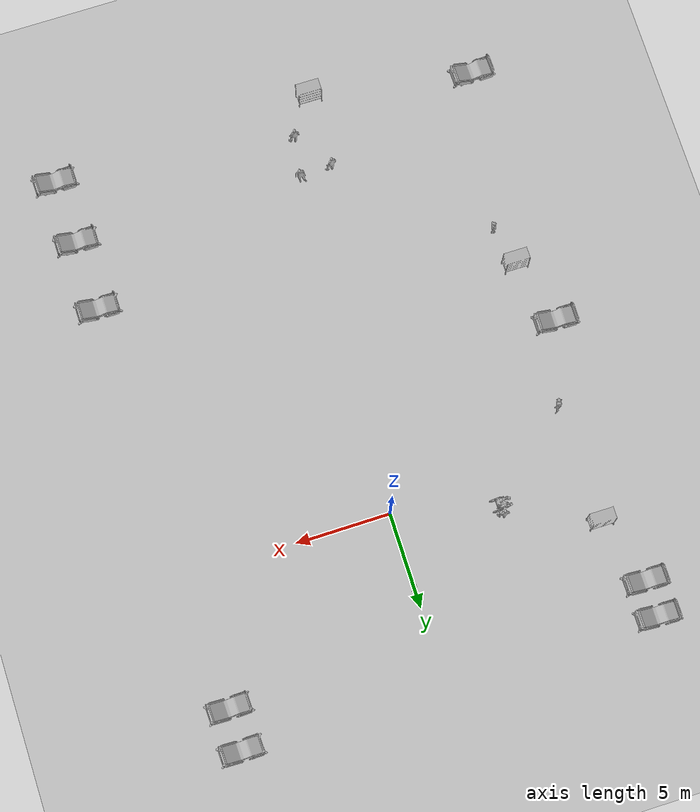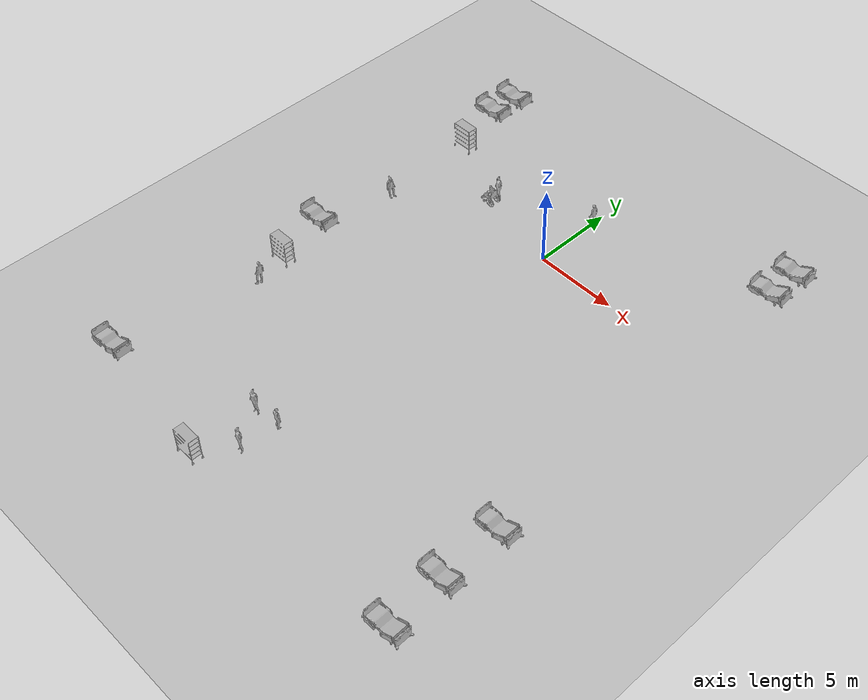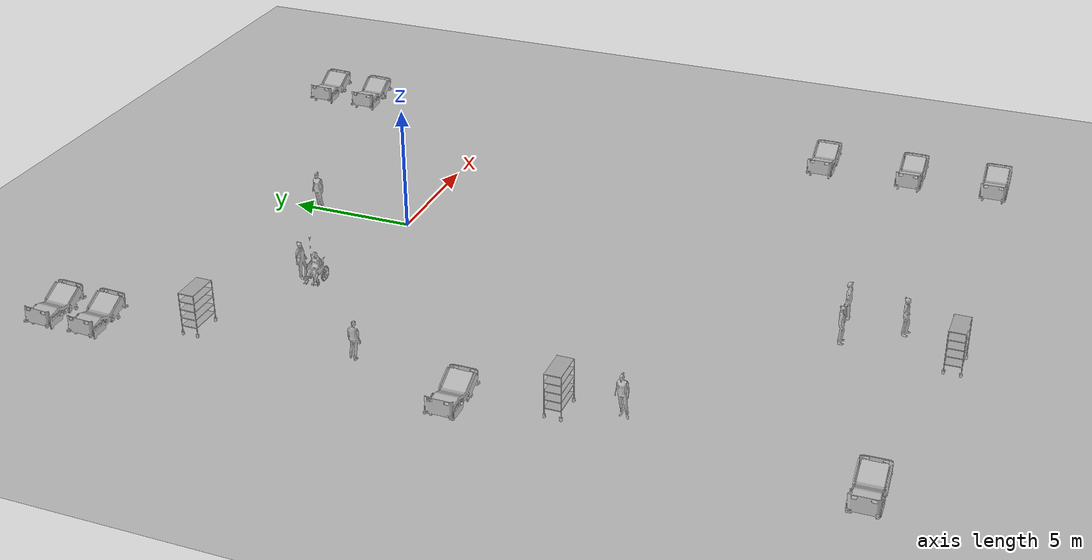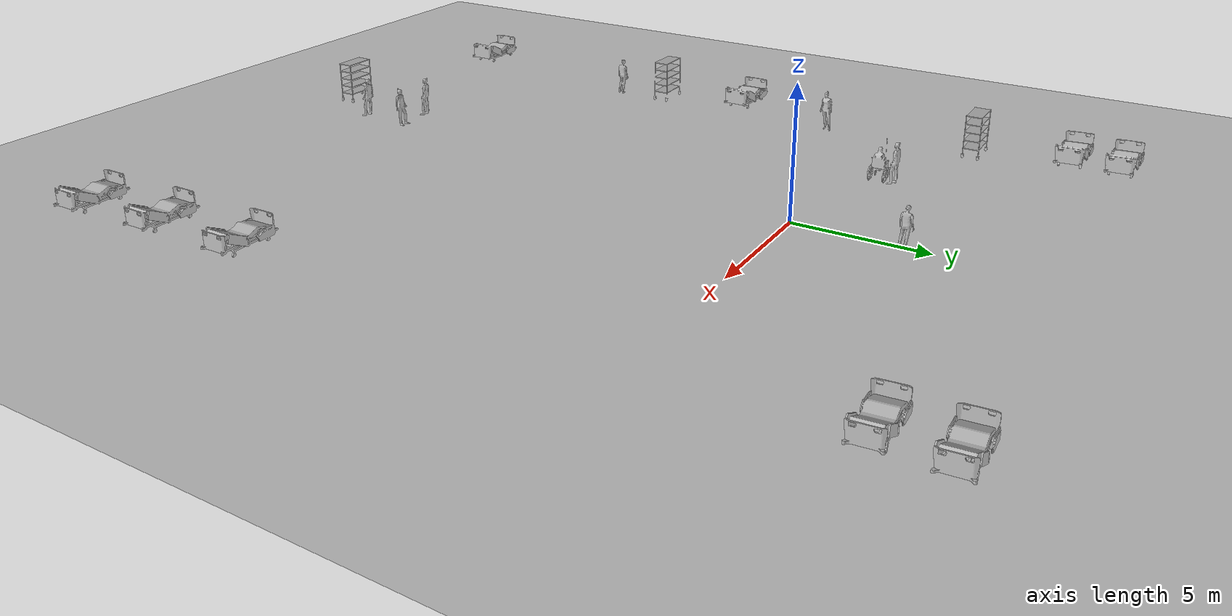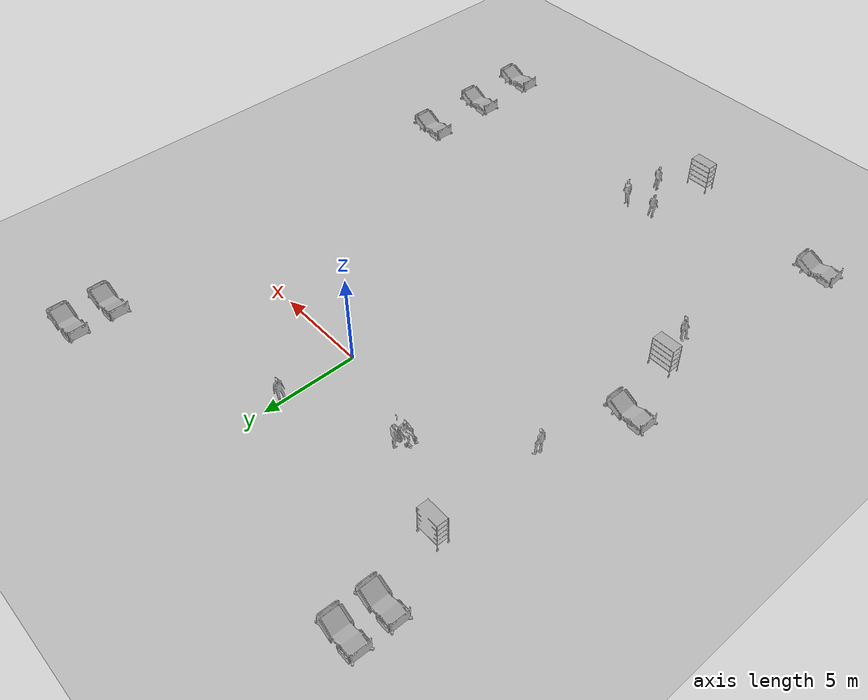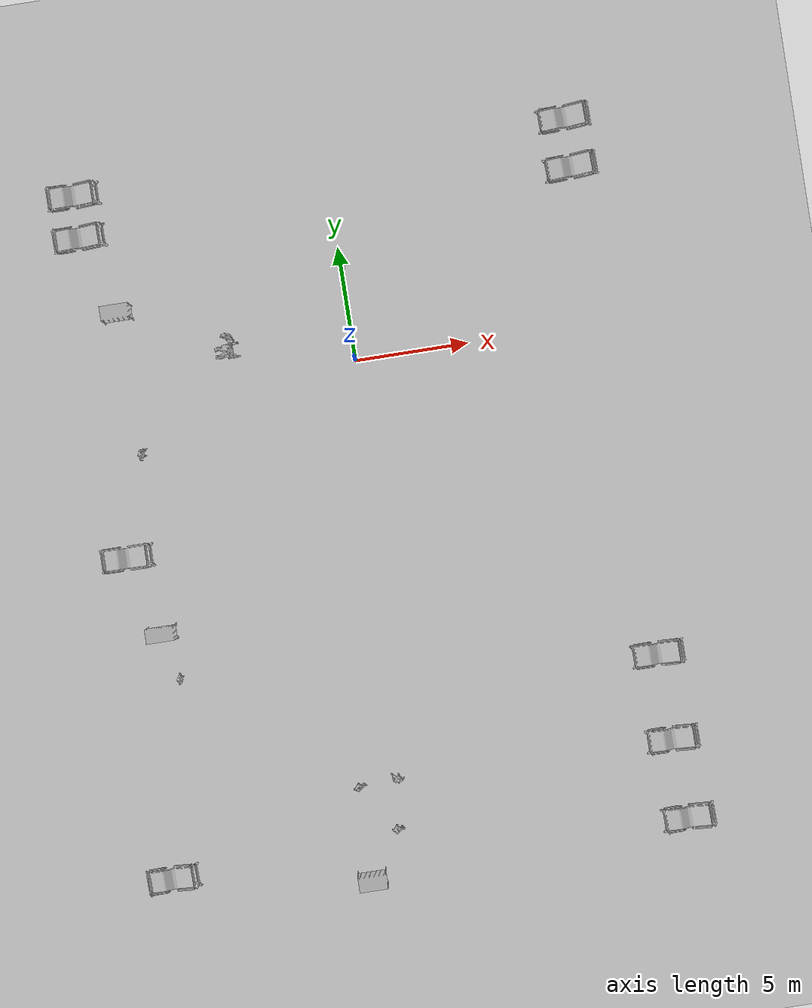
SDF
<sdf version="1.6">
 <world name="world">
  <gravity>0 0 -9.8</gravity>
  <physics default="0" name="default_physics" type="ode">
   <max_step_size>0.001</max_step_size>
   <real_time_factor>1</real_time_factor>
   <real_time_update_rate>1000</real_time_update_rate>
  </physics>
  <scene>
   <ambient>0.6 0.6 0.6 1</ambient>
   <background>0.4 0.4 0.4 1</background>
   <shadows>false</shadows>
   <grid>false</grid>
   <origin_visual>false</origin_visual>
  </scene>
  <include><uri>model://sun</uri></include>
  <include><uri>model://ground_plane</uri><pose>0 0 -0.1 0 -0 0</pose></include>
  <model name="CGMClassic_1">
   <include>
    <uri>model://CGMClassic</uri>
    <static>true</static>
    <pose>11.1777 -18.4129 0 0 0 -3.13719</pose>
   </include>
  </model>
  <model name="CGMClassic_2">
   <include>
    <uri>model://CGMClassic</uri>
    <static>true</static>
    <pose>11.1179 -14.6493 0 0 0 -3.13599</pose>
   </include>
  </model>
  <model name="Scrubs_1">
   <include><uri>model://Scrubs</uri><static>true</static><pose>-9.61916 -12.5112 0 0 0 -3.12353</pose></include>
  </model>
  <model name="Scrubs_2">
   <include><uri>model://Scrubs</uri><static>true</static><pose>0.054597 4.05849 0 0 -0 3.12413</pose></include>
  </model>
  <model name="PatientWheelChair_1">
   <include>
    <uri>model://PatientWheelChair</uri>
    <static>true</static>
    <pose>-5.46091 1.23577 0 0 0 -1.54828</pose>
   </include>
  </model>
  <model name="Scrubs_3">
   <include><uri>model://Scrubs</uri><static>true</static><pose>-5.38513 1.82526 0 0 0 -1.63757</pose></include>
  </model>
  <model name="CGMClassic_3">
   <include>
    <uri>model://CGMClassic</uri>
    <static>true</static>
    <pose>-11.2304 -21.1134 0 0 0 -3.11834</pose>
   </include>
  </model>
  <model name="CGMClassic_4">
   <include>
    <uri>model://CGMClassic</uri>
    <static>true</static>
    <pose>-11.0878 -7.00992 0 0 -0 3.1351</pose>
   </include>
  </model>
  <model name="CGMClassic_5">
   <include>
    <uri>model://CGMClassic</uri>
    <static>true</static>
    <pose>-11.0106 8.9505 -0.008203 -0.035019 -0.000392 3.13388</pose>
   </include>
  </model>
  <model name="CGMClassic_6">
   <include>
    <uri>model://CGMClassic</uri>
    <static>true</static>
    <pose>-11.025 7.10335 0 -0.035021 1.8e-05 -3.13762</pose>
   </include>
  </model>
  <model name="Scrubs_4">
   <include><uri>model://Scrubs</uri><static>true</static><pose>-0.93616 -18.2252 0 0 -0 1.62572</pose></include>
  </model>
  <model name="Scrubs_5">
   <include>
    <uri>model://Scrubs</uri>
    <static>true</static>
    <pose>-2.66657 -18.3733 0 -0.002221 -0.006608 -1.24025</pose>
   </include>
  </model>
  <model name="StorageRack_2">
   <include>
    <uri>model://StorageRack</uri>
    <static>true</static>
    <pose>-2.69866 -22.4178 -8e-06 0 4e-06 0</pose>
   </include>
  </model>
  <model name="CGMClassic_7">
   <include>
    <uri>model://CGMClassic</uri>
    <static>true</static>
    <pose>10.6166 9.06291 -0.008203 -0.03501 0.000885 -3.11285</pose>
   </include>
  </model>
  <model name="CGMClassic_8">
   <include>
    <uri>model://CGMClassic</uri>
    <static>true</static>
    <pose>10.6006 6.90956 -0.008203 -0.035003 0.001133 -3.10576</pose>
   </include>
  </model>
  <model name="Scrubs_6">
   <include><uri>model://Scrubs</uri><static>true</static><pose>-1.29468 -20.4093 0 0 0 -1.51066</pose></include>
  </model>
  <model name="CGMClassic_9">
   <include>
    <uri>model://CGMClassic</uri>
    <static>true</static>
    <pose>11.3613 -21.8867 0 0 0 -3.12292</pose>
   </include>
  </model>
  <model name="StorageRack_3">
   <include><uri>model://StorageRack</uri><static>true</static><pose>-10.1178 -10.4694 -0 0 -0 0</pose></include>
  </model>
  <model name="StorageRack_4">
   <include>
    <uri>model://StorageRack</uri>
    <static>true</static>
    <pose>-9.91557 3.5644 -9e-06 1e-06 1e-06 -0.000273</pose>
   </include>
  </model>
  <model name="Scrubs_7">
   <include><uri>model://Scrubs</uri><static>true</static><pose>-9.75875 -2.67552 0 0 -0 0</pose></include>
  </model>
 </world>
</sdf>

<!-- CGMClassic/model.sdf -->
<sdf version="1.6">
  <model name="CGMClassic">
   <static>true</static>
    <link name="body">
      <pose>0 0 0 0 0 0</pose>

      <visual name="visual">
        <geometry>
          <mesh>
            <uri>model://CGMClassic/meshes/CGMClassic.obj</uri>
            <scale>0.01 0.01 0.01</scale>
          </mesh>
        </geometry>
      </visual>

      <collision name="collision">
        <geometry>
          <mesh>
            <uri>model://CGMClassic/meshes/CGMClassic.obj</uri>
            <scale>0.01 0.01 0.01</scale>
          </mesh>
        </geometry>
      </collision>

    </link>
  </model>
</sdf>

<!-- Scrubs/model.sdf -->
<sdf version="1.6">
  <model name='Scrubs'>
   <static>true</static>
    <link name="body">
      <pose>0 0 0 0 0 0</pose>

      <visual name="visual">
        <geometry>
          <mesh>
            <uri>model://Scrubs/meshes/scrubs.obj</uri>
          </mesh>
        </geometry>
      </visual>

      <collision name="collision">
        <geometry>
          <mesh>
            <uri>model://Scrubs/meshes/Scrubs_Col.obj</uri>
          </mesh>
        </geometry>
      </collision>

    </link>
  </model>
</sdf>

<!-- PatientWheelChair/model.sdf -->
<sdf version="1.6">
  <model name="PatientWheelChair">
   <static>true</static>
    <link name="body">
      <pose>0 0 0 0 0 0</pose>

      <visual name="visual">
        <geometry>
          <mesh>
            <uri>model://PatientWheelChair/meshes/PatientWheelChair.obj</uri>
          </mesh>
        </geometry>
      </visual>

      <collision name="collision">
        <geometry>
          <mesh>
            <uri>model://PatientWheelChair/meshes/PatientWheelChair_Col.obj</uri>
          </mesh>
        </geometry>
      </collision>

    </link>
  </model>
</sdf>

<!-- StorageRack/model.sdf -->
<sdf version="1.5">
  <model name="StorageRack">
    <link name="link">
      <pose>0 0 0 0 0 0</pose>

        <visual name="visual">
          <geometry>
            <mesh><uri>model://StorageRack/meshes/StorageRack.obj</uri></mesh>
          </geometry>
        </visual>

        <collision name="collision">
          <geometry>
            <mesh><uri>model://StorageRack/meshes/StorageRack.obj</uri></mesh>
          </geometry>
        </collision>

    </link>
  </model>
</sdf>
